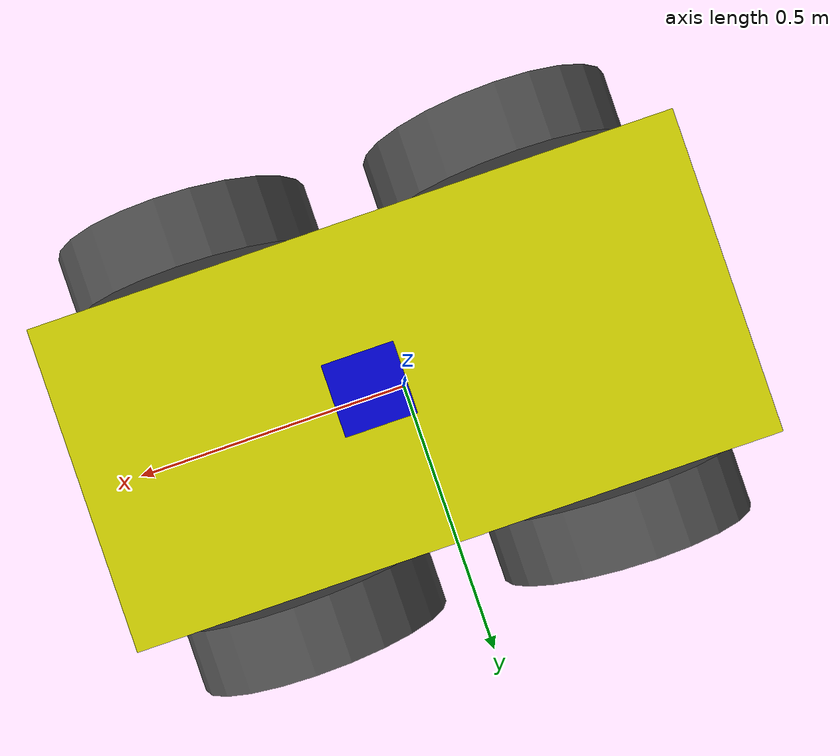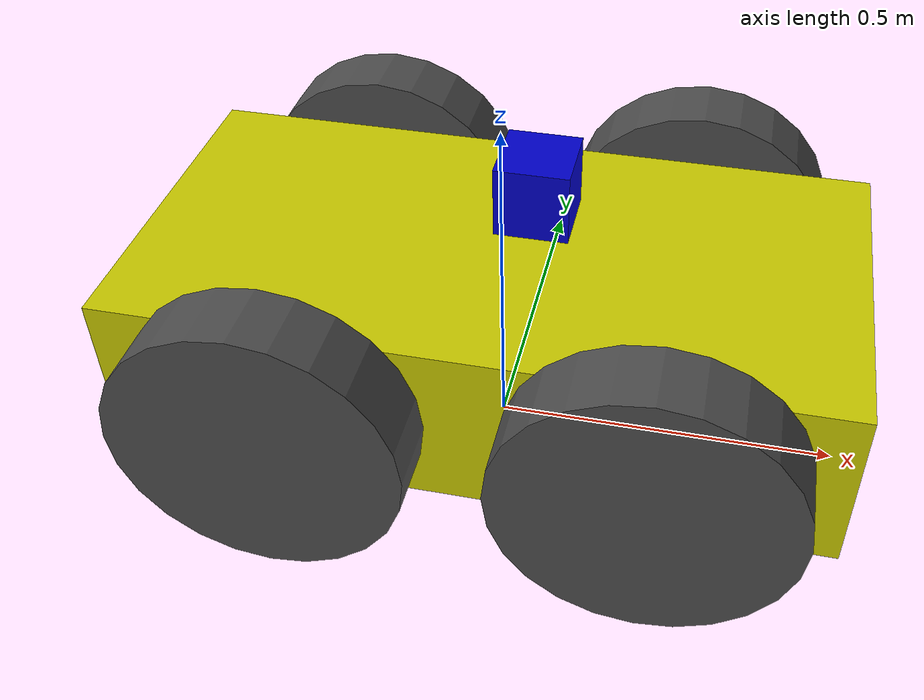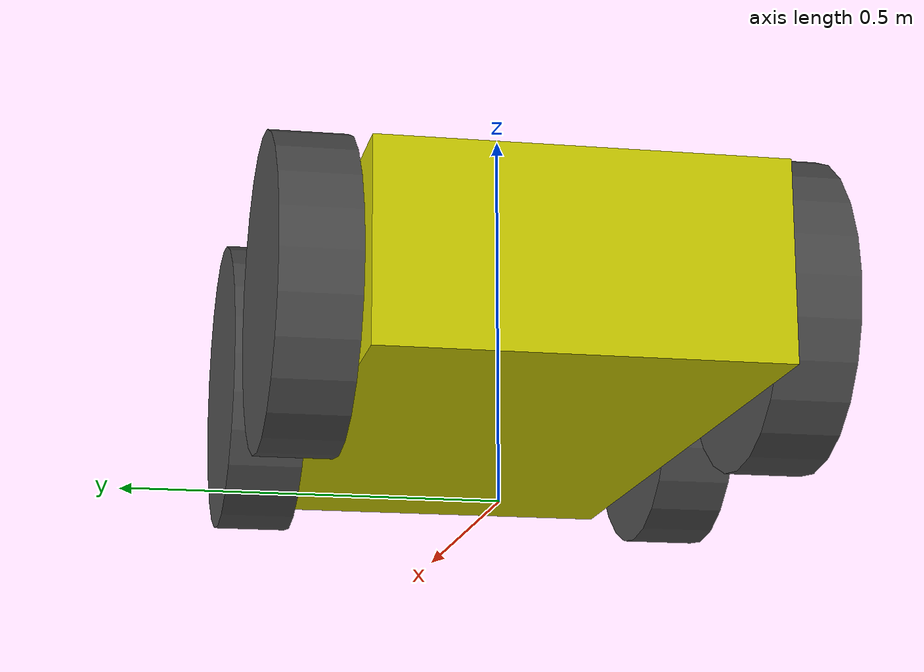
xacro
<?xml version="2.0"?>
<robot name="wheel_robot_base" xmlns:xacro="http://www.ros.org/wiki/xacro">

  <!-- Included URDF/XACRO Files -->
  <xacro:include filename="$(find robot_pkg)/urdf/materials.urdf.xacro" />
  <xacro:include filename="$(find robot_pkg)/urdf/wheel.urdf.xacro" />

  <!-- PROPERTY LIST -->
  <!--All units in m-kg-s-radians unit system -->
  <property name="M_PI" value="3.1415926535897931" />

  <!-- Main Body-base -->
  <property name="base_x_size" value="1.0" />
  <property name="base_y_size" value="0.5" />
  <property name="base_z_size" value="0.25" />
  <property name="base_mass" value="35" /> <!-- in kg-->
  <property name="hokuyo_size" value="0.1" />

  <!--Inertial macros for the box and cylinder. Units are kg*m^2-->
  <macro name="box_inertia" params="m x y z">
    <inertia  ixx="${m*(y*y+z*z)/12}" ixy = "0" ixz = "0"
              iyy="${m*(x*x+z*z)/12}" iyz = "0"
              izz="${m*(x*x+z*z)/12}" />
  </macro>

  <!-- BASE-FOOTPRINT -->
  <!-- base_footprint is a fictitious link(frame) that is on the ground right below base_link origin -->
  <link name="base_footprint">
    <inertial>
      <mass value="0.0001" />
      <origin xyz="0 0 0" />
      <inertia ixx="0.0001" ixy="0.0" ixz="0.0"
               iyy="0.0001" iyz="0.0"
               izz="0.0001" />
    </inertial>
    <visual>
      <origin xyz="0 0 0" rpy="0 0 0" />
      <geometry>
        <box size="0.001 0.001 0.001" />
      </geometry>
    </visual>
  </link>

  <gazebo reference="base_footprint">
    <turnGravityOff>false</turnGravityOff>
  </gazebo>

  <joint name="base_footprint_joint" type="fixed">
    <origin xyz="0 0 ${wheel_radius - base_z_origin_to_wheel_origin}" rpy="0 0 0" />
    <parent link="base_footprint"/>
    <child link="base_link" />
  </joint>

  <!-- BASE-LINK -->
  <!--Actual body/chassis of the robot-->
  <link name="base_link">
    <inertial>
      <mass value="${base_mass}" />
      <origin xyz="0 0 0" />
      <!--The 3x3 rotational inertia matrix. -->
      <box_inertia  m="${base_mass}" x="${base_x_size}" y="${base_y_size}" z="${base_z_size}"/>
    </inertial>
    <visual>
      <origin xyz="0 0 0" rpy="0 0 0" />
      <geometry>
        <box size="1 0.5 0.25"/>
      </geometry>
      <material name="Yellow" />
    </visual>
    <collision>
      <origin xyz="0 0 0" rpy="0 0 0 " />
      <geometry>
        <box size="1 0.5 0.25"/>
      </geometry>
    </collision>
  </link>
  <gazebo reference="base_link">
    <material>Gazebo/Yellow</material>
    <turnGravityOff>false</turnGravityOff>
  </gazebo>

  <link name="hokuyo_link">
    <visual>
      <origin xyz="0 0 0" rpy="0 0 0" />
      <geometry>
        <box size="${hokuyo_size} ${hokuyo_size} ${hokuyo_size}"/>
	<!--box size="0.05 0.05 0.05"/-->
      </geometry>
      <material name="Blue" />
    </visual>
  </link>
  <joint name="hokuyo_joint" type="fixed">
    <origin xyz="${hokuyo_size/2} 0 ${0.2+hokuyo_size/4}" rpy="0 0 0" />
    <!--origin xyz="${0.05/2} 0 ${0.2+0.05/4}" rpy="0 0 0" /-->
    <parent link="base_link"/>
    <child link="hokuyo_link" />
  </joint>
  <gazebo reference="hokuyo_link">
    <material>Gazebo/Blue</material>
    <turnGravityOff>false</turnGravityOff>
    <sensor type="ray" name="head_hokuyo_sensor">
      <pose>${hokuyo_size/2} 0 0 0 0 0</pose>
      <visualize>false</visualize>
      <update_rate>40</update_rate>
      <ray>
        <scan>
          <horizontal>
            <samples>720</samples>
            <resolution>1</resolution>
            <min_angle>-1.570796</min_angle>
            <max_angle>1.570796</max_angle>
          </horizontal>
        </scan>
        <range>
          <min>0.10</min>
          <max>10.0</max>
          <resolution>0.001</resolution>
        </range>
      </ray>
      <plugin name="gazebo_ros_head_hokuyo_controller" filename="libgazebo_ros_laser.so">
        <topicName>/scan</topicName>
        <frameName>hokuyo_link</frameName>
	<legacyModeNS>true</legacyModeNS>
      </plugin>
    </sensor>
  </gazebo>

  <!-- WHEELs -->
  <wheel fb="front" lr="right" parent="base_link" translateX="1" translateY="-1" flipY="-1"/>
  <wheel fb="front" lr="left" parent="base_link" translateX="1" translateY="1" flipY="-1"/>
  <wheel fb="back" lr="right" parent="base_link" translateX="-1" translateY="-1" flipY="-1"/>
  <wheel fb="back" lr="left" parent="base_link" translateX="-1" translateY="1" flipY="-1"/>

  <gazebo>
    <plugin name="skid_steer_drive_controller" filename="libgazebo_ros_skid_steer_drive.so">
      <alwaysOn>true</alwaysOn>
      <updateRate>100.0</updateRate>
      <leftFrontJoint>front_left_wheel_joint</leftFrontJoint>
      <rightFrontJoint>front_right_wheel_joint</rightFrontJoint>
      <leftRearJoint>back_left_wheel_joint</leftRearJoint>
      <rightRearJoint>back_right_wheel_joint</rightRearJoint>
      <wheelSeparation>${base_y_size}</wheelSeparation>
      <wheelDiameter>${2*wheel_radius}</wheelDiameter>
      <torque>35</torque>
      <broadcastTF>1</broadcastTF>
      <odometryFrame>map</odometryFrame>
      <commandTopic>cmd_vel</commandTopic>
      <odometryTopic>odom</odometryTopic>
      <robotBaseFrame>base_footprint</robotBaseFrame>
      <legacyModeNS>true</legacyModeNS>
    </plugin>
    <plugin name="gazebo_ros_control" filename="libgazebo_ros_control.so" />
  </gazebo>
</robot>

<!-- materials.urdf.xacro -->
<robot>
  <material name="Black">
    <color rgba="0.0 0.0 0.0 1.0"/>
  </material>

  <material name="Blue">
    <color rgba="0.0 0.0 0.8 1.0"/>
  </material>

  <material name="Green">
    <color rgba="0.0 0.8 0.0 1.0"/>
  </material>

  <material name="Gray">
    <color rgba="0.7 0.7 0.7 1.0"/>
  </material>

  <material name="DarkGray">
    <color rgba="0.3 0.3 0.3 1.0"/>
  </material>

  <material name="Red">
    <color rgba="0.8 0.0 0.0 1.0"/>
  </material>

  <material name="White">
    <color rgba="1.0 1.0 1.0 1.0"/>
  </material>

  <material name="Yellow">
    <color rgba="0.8 0.8 0.0 1.0"/>
  </material>
</robot>

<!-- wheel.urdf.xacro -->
<robot name="wheel" xmlns:xacro="http://www.ros.org/wiki/xacro">

  <!-- Wheels -->
  <property name="wheel_radius" value="0.2" />
  <property name="wheel_height" value="0.1" />
  <property name="wheel_mass" value="2.5" /> <!-- in kg-->

  <property name="base_x_origin_to_wheel_origin" value="0.25" />
  <property name="base_y_origin_to_wheel_origin" value="0.3" />
  <property name="base_z_origin_to_wheel_origin" value="0.0" />

  <macro name="cylinder_inertia" params="m r h">
    <inertia  ixx="${m*(3*r*r+h*h)/12}" ixy = "0" ixz = "0"
              iyy="${m*(3*r*r+h*h)/12}" iyz = "0"
              izz="${m*r*r/2}" />
  </macro>

  <xacro:macro name="wheel" params="fb lr parent translateX translateY flipY"> <!--fb : front, back ; lr: left, right -->
    <link name="${fb}_${lr}_wheel">
      <visual>
        <origin xyz="0 0 0" rpy="${flipY*M_PI/2} 0 0" />
        <geometry>
          <cylinder length="${wheel_height}" radius="${wheel_radius}" />
        </geometry>
        <material name="DarkGray" />
      </visual>
      <collision>
        <origin xyz="0 0 0" rpy="${flipY*M_PI/2} 0 0" />
        <geometry>
          <cylinder length="${wheel_height}" radius="${wheel_radius}" />
        </geometry>
      </collision>
      <inertial>
        <mass value="${wheel_mass}" />
        <origin xyz="0 0 0" />
        <cylinder_inertia  m="${wheel_mass}" r="${wheel_radius}" h="${wheel_height}" />
      </inertial>
    </link>

    <gazebo reference="${fb}_${lr}_wheel">
      <mu1 value="1.0"/>
      <mu2 value="1.0"/>
      <kp  value="10000000.0" />
      <kd  value="1.0" />
      <fdir1 value="1 0 0"/>
      <material>Gazebo/Grey</material>
      <turnGravityOff>false</turnGravityOff>
    </gazebo>

    <joint name="${fb}_${lr}_wheel_joint" type="continuous">
      <parent link="${parent}"/>
      <child link="${fb}_${lr}_wheel"/>
      <origin xyz="${translateX * base_x_origin_to_wheel_origin} ${translateY * base_y_origin_to_wheel_origin} ${base_z_origin_to_wheel_origin}" rpy="0 0 0" />
      <axis xyz="0 1 0" rpy="0 0 0" />
      <limit effort="100" velocity="100"/>
      <joint_properties damping="0.0" friction="0.0"/>
    </joint>

    <!-- Transmission is important to link the joints and the controller -->
    <transmission name="${fb}_${lr}_wheel_joint_trans">
      <type>transmission_interface/SimpleTransmission</type>
      <joint name="${fb}_${lr}_wheel_joint">
        <hardwareInterface>EffortJointInterface</hardwareInterface>
      </joint>
      <actuator name="${fb}_${lr}_wheel_joint_motor">
        <hardwareInterface>EffortJointInterface</hardwareInterface>
        <mechanicalReduction>1</mechanicalReduction>
      </actuator>
    </transmission>

  </xacro:macro>
</robot>
